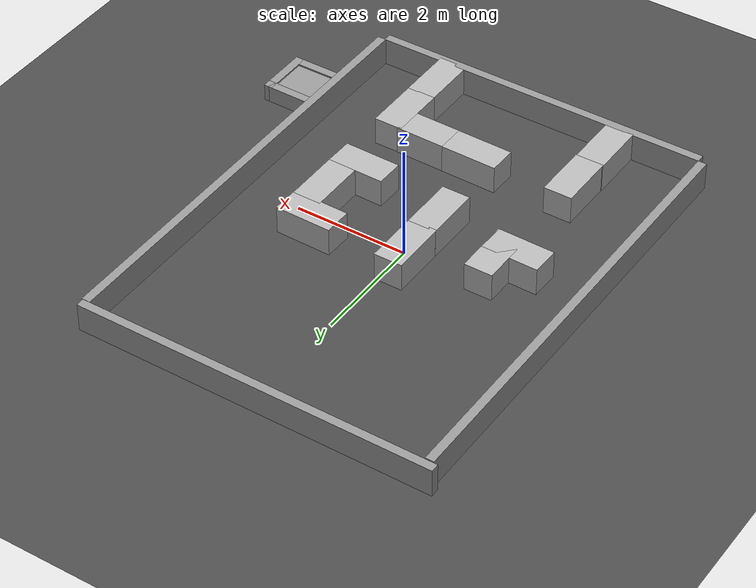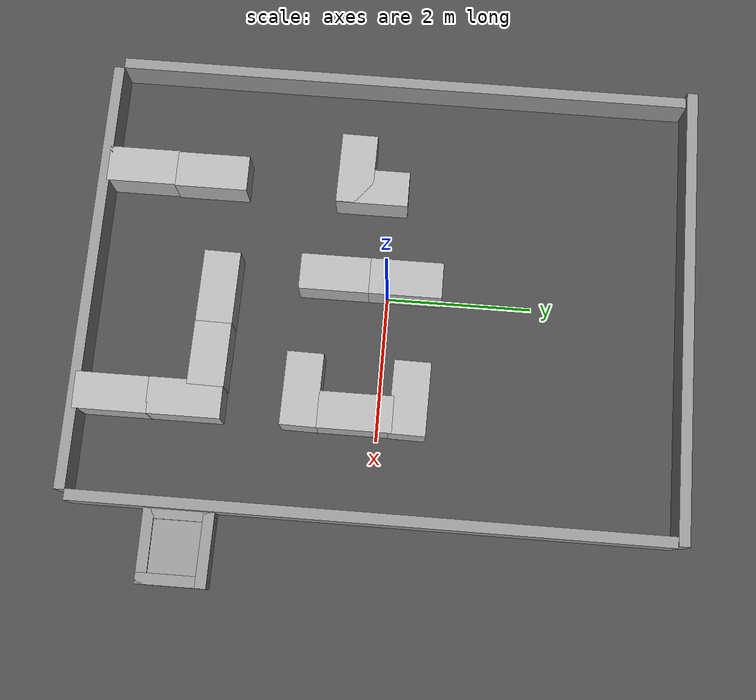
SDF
<sdf version="1.7">
 <world name="default">
  <model name="ground_plane">
   <static>1</static>
   <link name="link">
    <collision name="collision">
     <geometry><plane><normal>0 0 1</normal><size>100 100</size></plane></geometry>
    </collision>
    <visual name="visual">
     <cast_shadows>0</cast_shadows>
     <geometry><plane><normal>0 0 1</normal><size>100 100</size></plane></geometry>
     <material>
      <script><uri>file://media/materials/scripts/gazebo.material</uri><name>Gazebo/DarkGray</name></script>
     </material>
    </visual>
   </link>
  </model>
  <model name="greyBoxIsae">
   <pose>3.61381 -2.50208 0 0 -0 0</pose>
   <link name="Wall_0">
    <collision name="Wall_0_Collision">
     <geometry><box><size>0.75 0.75 0.27</size></box></geometry>
     <pose>0 0 0.135 0 -0 0</pose>
    </collision>
    <visual name="Wall_0_Visual">
     <pose>0 0 0.135 0 -0 0</pose>
     <geometry><box><size>0.75 0.75 0.27</size></box></geometry>
     <material>
      <script><uri>file://media/materials/scripts/gazebo.material</uri><name>Gazebo/Grey</name></script>
      <ambient>1 1 1 1</ambient>
     </material>
     <meta><layer>0</layer></meta>
    </visual>
    <pose>0.012 -0.047314 0 0 -0 0</pose>
   </link>
   <link name="Wall_10">
    <collision name="Wall_10_Collision">
     <geometry><box><size>0.948 0.15 0.3</size></box></geometry>
     <pose>0 0 0.15 0 -0 0</pose>
    </collision>
    <visual name="Wall_10_Visual">
     <pose>0 0 0.15 0 -0 0</pose>
     <geometry><box><size>0.948 0.15 0.3</size></box></geometry>
     <material>
      <script><uri>file://media/materials/scripts/gazebo.material</uri><name>Gazebo/Grey</name></script>
      <ambient>0.298039 0.298039 0.298039 1</ambient>
     </material>
     <meta><layer>0</layer></meta>
    </visual>
    <pose>-0.425 -0.000314 0 0 -0 1.5708</pose>
   </link>
   <link name="Wall_7">
    <collision name="Wall_7_Collision">
     <geometry><box><size>1 0.15 0.3</size></box></geometry>
     <pose>0 0 0.15 0 -0 0</pose>
    </collision>
    <visual name="Wall_7_Visual">
     <pose>0 0 0.15 0 -0 0</pose>
     <geometry><box><size>1 0.15 0.3</size></box></geometry>
     <material>
      <script><uri>file://media/materials/scripts/gazebo.material</uri><name>Gazebo/Grey</name></script>
      <ambient>0.298039 0.298039 0.298039 1</ambient>
     </material>
     <meta><layer>0</layer></meta>
    </visual>
    <pose>0 0.394186 0 0 -0 -0.010588</pose>
   </link>
   <link name="Wall_8">
    <collision name="Wall_8_Collision">
     <geometry><box><size>0.939322 0.15 0.3</size></box></geometry>
     <pose>0 0 0.15 0 -0 0</pose>
    </collision>
    <visual name="Wall_8_Visual">
     <pose>0 0 0.15 0 -0 0</pose>
     <geometry><box><size>0.939322 0.15 0.3</size></box></geometry>
     <material>
      <script><uri>file://media/materials/scripts/gazebo.material</uri><name>Gazebo/Grey</name></script>
      <ambient>0.298039 0.298039 0.298039 1</ambient>
     </material>
     <meta><layer>0</layer></meta>
    </visual>
    <pose>0.425 -0.004814 0 0 -0 -1.5708</pose>
   </link>
   <link name="Wall_9">
    <collision name="Wall_9_Collision">
     <geometry><box><size>1 0.15 0.3</size></box></geometry>
     <pose>0 0 0.15 0 -0 0</pose>
    </collision>
    <visual name="Wall_9_Visual">
     <pose>0 0 0.15 0 -0 0</pose>
     <geometry><box><size>1 0.15 0.3</size></box></geometry>
     <material>
      <script><uri>file://media/materials/scripts/gazebo.material</uri><name>Gazebo/Grey</name></script>
      <ambient>0.298039 0.298039 0.298039 1</ambient>
     </material>
     <meta><layer>0</layer></meta>
    </visual>
    <pose>0 -0.399314 0 0 -0 3.14159</pose>
   </link>
   <static>1</static>
  </model>
  <model name="external_area">
   <link name="left_wall">
    <pose>-0.042464 4.02442 0 0 0 -0.002396</pose>
    <inertial>
     <inertia><ixx>0</ixx><ixy>0</ixy><ixz>0</ixz><iyy>0</iyy><iyz>0</iyz><izz>0</izz></inertia>
     <mass>0</mass>
    </inertial>
    <visual name="Wall_6_Visual">
     <pose>0 0 0.25 0 -0 0</pose>
     <geometry><box><size>6.33294 0.15 0.5</size></box></geometry>
     <material>
      <script><uri>file://media/materials/scripts/gazebo.material</uri><name>Gazebo/Grey</name></script>
      <ambient>0.298039 0.298039 0.298039 1</ambient>
      <shader type="pixel"/>
     </material>
     <meta><layer>0</layer></meta>
    </visual>
    <collision name="Wall_6_Collision">
     <pose>0 0 0.25 0 -0 0</pose>
     <geometry><box><size>6.33294 0.15 0.5</size></box></geometry>
     <surface>
      <friction>
       <ode><mu>1</mu><mu2>1</mu2><fdir1>0 0 0</fdir1><slip1>0</slip1><slip2>0</slip2></ode>
       <torsional>
        <coefficient>1</coefficient>
        <patch_radius>0</patch_radius>
        <surface_radius>0</surface_radius>
        <use_patch_radius>1</use_patch_radius>
        <ode><slip>0</slip></ode>
       </torsional>
      </friction>
      <bounce><restitution_coefficient>0</restitution_coefficient><threshold>1e+06</threshold></bounce>
      <contact>
       <collide_without_contact>0</collide_without_contact>
       <collide_without_contact_bitmask>1</collide_without_contact_bitmask>
       <collide_bitmask>1</collide_bitmask>
       <ode>
        <soft_cfm>0</soft_cfm>
        <soft_erp>0.2</soft_erp>
        <kp>1e+13</kp>
        <kd>1</kd>
        <max_vel>0.01</max_vel>
        <min_depth>0</min_depth>
       </ode>
       <bullet>
        <split_impulse>1</split_impulse>
        <split_impulse_penetration_threshold>-0.01</split_impulse_penetration_threshold>
        <soft_cfm>0</soft_cfm>
        <soft_erp>0.2</soft_erp>
        <kp>1e+13</kp>
        <kd>1</kd>
       </bullet>
      </contact>
     </surface>
    </collision>
   </link>
   <link name="far_wall">
    <pose>3.06922 -0.060637 0 0 0 -1.57218</pose>
    <visual name="Wall_7_Visual">
     <pose>0 0 0.25 0 -0 0</pose>
     <geometry><box><size>8 0.15 0.5</size></box></geometry>
     <material>
      <script><uri>file://media/materials/scripts/gazebo.material</uri><name>Gazebo/Grey</name></script>
      <ambient>0.298039 0.298039 0.298039 1</ambient>
      <shader type="pixel"/>
     </material>
     <meta><layer>0</layer></meta>
    </visual>
    <collision name="Wall_7_Collision">
     <pose>0 0 0.25 0 -0 0</pose>
     <geometry><box><size>8 0.15 0.5</size></box></geometry>
     <surface>
      <friction>
       <ode><mu>1</mu><mu2>1</mu2><fdir1>0 0 0</fdir1><slip1>0</slip1><slip2>0</slip2></ode>
       <torsional>
        <coefficient>1</coefficient>
        <patch_radius>0</patch_radius>
        <surface_radius>0</surface_radius>
        <use_patch_radius>1</use_patch_radius>
        <ode><slip>0</slip></ode>
       </torsional>
      </friction>
      <bounce><restitution_coefficient>0</restitution_coefficient><threshold>1e+06</threshold></bounce>
      <contact>
       <collide_without_contact>0</collide_without_contact>
       <collide_without_contact_bitmask>1</collide_without_contact_bitmask>
       <collide_bitmask>1</collide_bitmask>
       <ode>
        <soft_cfm>0</soft_cfm>
        <soft_erp>0.2</soft_erp>
        <kp>1e+13</kp>
        <kd>1</kd>
        <max_vel>0.01</max_vel>
        <min_depth>0</min_depth>
       </ode>
       <bullet>
        <split_impulse>1</split_impulse>
        <split_impulse_penetration_threshold>-0.01</split_impulse_penetration_threshold>
        <soft_cfm>0</soft_cfm>
        <soft_erp>0.2</soft_erp>
        <kp>1e+13</kp>
        <kd>1</kd>
       </bullet>
      </contact>
     </surface>
    </collision>
   </link>
   <link name="near_wall">
    <pose>-3.06301 -0.060281 0 0 -0 1.5694</pose>
    <visual name="Wall_9_Visual">
     <pose>0 0 0.25 0 -0 0</pose>
     <geometry><box><size>8 0.15 0.5</size></box></geometry>
     <material>
      <script><uri>file://media/materials/scripts/gazebo.material</uri><name>Gazebo/Grey</name></script>
      <ambient>0.298039 0.298039 0.298039 1</ambient>
      <shader type="pixel"/>
     </material>
     <meta><layer>0</layer></meta>
    </visual>
    <collision name="Wall_9_Collision">
     <pose>0 0 0.25 0 -0 0</pose>
     <geometry><box><size>8 0.15 0.5</size></box></geometry>
     <surface>
      <friction>
       <ode><mu>1</mu><mu2>1</mu2><fdir1>0 0 0</fdir1><slip1>0</slip1><slip2>0</slip2></ode>
       <torsional>
        <coefficient>1</coefficient>
        <patch_radius>0</patch_radius>
        <surface_radius>0</surface_radius>
        <use_patch_radius>1</use_patch_radius>
        <ode><slip>0</slip></ode>
       </torsional>
      </friction>
      <bounce><restitution_coefficient>0</restitution_coefficient><threshold>1e+06</threshold></bounce>
      <contact>
       <collide_without_contact>0</collide_without_contact>
       <collide_without_contact_bitmask>1</collide_without_contact_bitmask>
       <collide_bitmask>1</collide_bitmask>
       <ode>
        <soft_cfm>0</soft_cfm>
        <soft_erp>0.2</soft_erp>
        <kp>1e+13</kp>
        <kd>1</kd>
        <max_vel>0.01</max_vel>
        <min_depth>0</min_depth>
       </ode>
       <bullet>
        <split_impulse>1</split_impulse>
        <split_impulse_penetration_threshold>-0.01</split_impulse_penetration_threshold>
        <soft_cfm>0</soft_cfm>
        <soft_erp>0.2</soft_erp>
        <kp>1e+13</kp>
        <kd>1</kd>
       </bullet>
      </contact>
     </surface>
    </collision>
   </link>
   <link name="right_wall">
    <pose>0.004659 -4.13195 0 0 -0 3.14159</pose>
    <visual name="Wall_8_Visual">
     <pose>0 0 0.25 0 -0 0</pose>
     <geometry><box><size>6 0.15 0.5</size></box></geometry>
     <material>
      <script><uri>file://media/materials/scripts/gazebo.material</uri><name>Gazebo/Grey</name></script>
      <ambient>0.298039 0.298039 0.298039 1</ambient>
      <shader type="pixel"/>
     </material>
     <meta><layer>0</layer></meta>
    </visual>
    <collision name="Wall_8_Collision">
     <pose>0 0 0.25 0 -0 0</pose>
     <geometry><box><size>6 0.15 0.5</size></box></geometry>
     <surface>
      <friction>
       <ode><mu>1</mu><mu2>1</mu2><fdir1>0 0 0</fdir1><slip1>0</slip1><slip2>0</slip2></ode>
       <torsional>
        <coefficient>1</coefficient>
        <patch_radius>0</patch_radius>
        <surface_radius>0</surface_radius>
        <use_patch_radius>1</use_patch_radius>
        <ode><slip>0</slip></ode>
       </torsional>
      </friction>
      <bounce><restitution_coefficient>0</restitution_coefficient><threshold>1e+06</threshold></bounce>
      <contact>
       <collide_without_contact>0</collide_without_contact>
       <collide_without_contact_bitmask>1</collide_without_contact_bitmask>
       <collide_bitmask>1</collide_bitmask>
       <ode>
        <soft_cfm>0</soft_cfm>
        <soft_erp>0.2</soft_erp>
        <kp>1e+13</kp>
        <kd>1</kd>
        <max_vel>0.01</max_vel>
        <min_depth>0</min_depth>
       </ode>
       <bullet>
        <split_impulse>1</split_impulse>
        <split_impulse_penetration_threshold>-0.01</split_impulse_penetration_threshold>
        <soft_cfm>0</soft_cfm>
        <soft_erp>0.2</soft_erp>
        <kp>1e+13</kp>
        <kd>1</kd>
       </bullet>
      </contact>
     </surface>
    </collision>
   </link>
   <static>1</static>
   <pose>-0.00805 0.07131 0 0 -0 0</pose>
  </model>
  <model name="bat_res_isae_clone_2">
   <static>1</static>
   <link name="body">
    <visual name="visual">
     <geometry>
      <mesh><uri>file://models/bat_res_isae/bat_isae/bat_isae.dae</uri><scale>1 1 1</scale></mesh>
     </geometry>
    </visual>
    <collision name="collision">
     <geometry>
      <mesh><uri>file://models/bat_res_isae/bat_isae/bat_isae.dae</uri><scale>1 1 1</scale></mesh>
     </geometry>
    </collision>
   </link>
   <pose>-1.73019 -0.552067 0 0 0 -1.58744</pose>
  </model>
  <model name="bat_res_isae_clone_2_clone">
   <static>1</static>
   <link name="body">
    <visual name="visual">
     <geometry>
      <mesh><uri>file://models/bat_res_isae/bat_isae/bat_isae.dae</uri><scale>1 1 1</scale></mesh>
     </geometry>
    </visual>
    <collision name="collision">
     <geometry>
      <mesh><uri>file://models/bat_res_isae/bat_isae/bat_isae.dae</uri><scale>1 1 1</scale></mesh>
     </geometry>
    </collision>
   </link>
   <pose>-1.5509 -3.51944 0 0 -0 0</pose>
  </model>
  <model name="bat_res_isae_clone_2_clone_clone">
   <static>1</static>
   <link name="body">
    <visual name="visual">
     <geometry>
      <mesh><uri>file://models/bat_res_isae/bat_isae/bat_isae.dae</uri><scale>1 1 1</scale></mesh>
     </geometry>
    </visual>
    <collision name="collision">
     <geometry>
      <mesh><uri>file://models/bat_res_isae/bat_isae/bat_isae.dae</uri><scale>1 1 1</scale></mesh>
     </geometry>
    </collision>
   </link>
   <pose>-1.53994 -2.55875 0 0 -0 0</pose>
  </model>
  <model name="bat_res_isae_clone_2_clone_clone_0">
   <static>1</static>
   <link name="body">
    <visual name="visual">
     <geometry>
      <mesh><uri>file://models/bat_res_isae/bat_isae/bat_isae.dae</uri><scale>1 1 1</scale></mesh>
     </geometry>
    </visual>
    <collision name="collision">
     <geometry>
      <mesh><uri>file://models/bat_res_isae/bat_isae/bat_isae.dae</uri><scale>1 1 1</scale></mesh>
     </geometry>
    </collision>
   </link>
   <pose>-1.47412 -0.308229 0 0 -0 0</pose>
  </model>
  <model name="bat_res_isae_clone_2_clone_2">
   <static>1</static>
   <link name="body">
    <visual name="visual">
     <geometry>
      <mesh><uri>file://models/bat_res_isae/bat_isae/bat_isae.dae</uri><scale>1 1 1</scale></mesh>
     </geometry>
    </visual>
    <collision name="collision">
     <geometry>
      <mesh><uri>file://models/bat_res_isae/bat_isae/bat_isae.dae</uri><scale>1 1 1</scale></mesh>
     </geometry>
    </collision>
   </link>
   <pose>0.112072 -2.29441 0 0 0 -1.58744</pose>
  </model>
  <model name="bat_res_isae_clone_2_clone_3">
   <static>1</static>
   <link name="body">
    <visual name="visual">
     <geometry>
      <mesh><uri>file://models/bat_res_isae/bat_isae/bat_isae.dae</uri><scale>1 1 1</scale></mesh>
     </geometry>
    </visual>
    <collision name="collision">
     <geometry>
      <mesh><uri>file://models/bat_res_isae/bat_isae/bat_isae.dae</uri><scale>1 1 1</scale></mesh>
     </geometry>
    </collision>
   </link>
   <pose>0.984527 -2.31096 0 0 0 -1.58744</pose>
  </model>
  <model name="bat_res_isae_clone_2_clone_clone_clone">
   <static>1</static>
   <link name="body">
    <visual name="visual">
     <geometry>
      <mesh><uri>file://models/bat_res_isae/bat_isae/bat_isae.dae</uri><scale>1 1 1</scale></mesh>
     </geometry>
    </visual>
    <collision name="collision">
     <geometry>
      <mesh><uri>file://models/bat_res_isae/bat_isae/bat_isae.dae</uri><scale>1 1 1</scale></mesh>
     </geometry>
    </collision>
   </link>
   <pose>1.66779 -2.57613 0 0 -0 0</pose>
  </model>
  <model name="bat_res_isae_clone_2_clone_clone_clone_0">
   <static>1</static>
   <link name="body">
    <visual name="visual">
     <geometry>
      <mesh><uri>file://models/bat_res_isae/bat_isae/bat_isae.dae</uri><scale>1 1 1</scale></mesh>
     </geometry>
    </visual>
    <collision name="collision">
     <geometry>
      <mesh><uri>file://models/bat_res_isae/bat_isae/bat_isae.dae</uri><scale>1 1 1</scale></mesh>
     </geometry>
    </collision>
   </link>
   <pose>1.66986 -3.56082 0 0 -0 0</pose>
  </model>
  <model name="bat_res_isae_clone_2_clone_clone_clone_1">
   <static>1</static>
   <link name="body">
    <visual name="visual">
     <geometry>
      <mesh><uri>file://models/bat_res_isae/bat_isae/bat_isae.dae</uri><scale>1 1 1</scale></mesh>
     </geometry>
    </visual>
    <collision name="collision">
     <geometry>
      <mesh><uri>file://models/bat_res_isae/bat_isae/bat_isae.dae</uri><scale>1 1 1</scale></mesh>
     </geometry>
    </collision>
   </link>
   <pose>-0.196729 -0.707431 0 0 -0 0</pose>
  </model>
  <model name="bat_res_isae_clone_2_clone_clone_clone_1_clone">
   <static>1</static>
   <link name="body">
    <visual name="visual">
     <geometry>
      <mesh><uri>file://models/bat_res_isae/bat_isae/bat_isae.dae</uri><scale>1 1 1</scale></mesh>
     </geometry>
    </visual>
    <collision name="collision">
     <geometry>
      <mesh><uri>file://models/bat_res_isae/bat_isae/bat_isae.dae</uri><scale>1 1 1</scale></mesh>
     </geometry>
    </collision>
   </link>
   <pose>-0.196379 0.248869 0 0 -0 0</pose>
  </model>
  <model name="bat_res_isae_clone_2_clone_3_clone_clone">
   <static>1</static>
   <link name="body">
    <visual name="visual">
     <geometry>
      <mesh><uri>file://models/bat_res_isae/bat_isae/bat_isae.dae</uri><scale>1 1 1</scale></mesh>
     </geometry>
    </visual>
    <collision name="collision">
     <geometry>
      <mesh><uri>file://models/bat_res_isae/bat_isae/bat_isae.dae</uri><scale>1 1 1</scale></mesh>
     </geometry>
    </collision>
   </link>
   <pose>1.44597 0.414019 0 0 0 -1.58744</pose>
  </model>
  <model name="bat_res_isae_clone_2_clone_3_clone_clone_0">
   <static>1</static>
   <link name="body">
    <visual name="visual">
     <geometry>
      <mesh><uri>file://models/bat_res_isae/bat_isae/bat_isae.dae</uri><scale>1 1 1</scale></mesh>
     </geometry>
    </visual>
    <collision name="collision">
     <geometry>
      <mesh><uri>file://models/bat_res_isae/bat_isae/bat_isae.dae</uri><scale>1 1 1</scale></mesh>
     </geometry>
    </collision>
   </link>
   <pose>1.43358 -1.02926 0 0 0 -1.58744</pose>
  </model>
  <model name="bat_res_isae_clone_2_clone_clone_clone_1_clone_0">
   <static>1</static>
   <link name="body">
    <visual name="visual">
     <geometry>
      <mesh><uri>file://models/bat_res_isae/bat_isae/bat_isae.dae</uri><scale>1 1 1</scale></mesh>
     </geometry>
    </visual>
    <collision name="collision">
     <geometry>
      <mesh><uri>file://models/bat_res_isae/bat_isae/bat_isae.dae</uri><scale>1 1 1</scale></mesh>
     </geometry>
    </collision>
   </link>
   <pose>1.68741 -0.292984 0 0 -0 0</pose>
  </model>
 </world>
</sdf>
